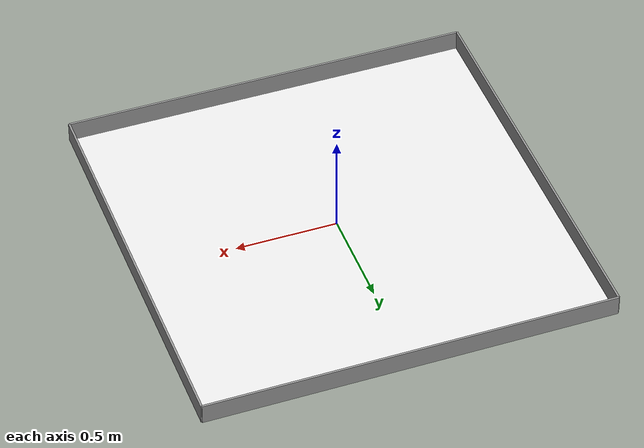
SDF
<?xml version="1.0" ?>
<sdf version="1.4">
  <world name="default">

    <!-- Global light source -->
    <include>
      <uri>model://sun</uri>
    </include>

    <light type="spot" name="spot1">
      <cast_shadows>true</cast_shadows>
      <pose>0 0.6 0.07 1.57079632679 0 0</pose>
      <diffuse>1 1 1 1</diffuse>
      <specular>.1 .1 .1 1</specular>
      <attenuation>
        <range>20</range>
        <linear>0.01</linear>
        <constant>0.5</constant>
        <quadratic>0</quadratic>
      </attenuation>
      <spot>
        <inner_angle>0.01</inner_angle>
        <outer_angle>0.2</outer_angle>
        <falloff>1.0</falloff>
      </spot>
      <cast_shadows>true</cast_shadows>
    </light>

    <light type="spot" name="spot2">
      <cast_shadows>true</cast_shadows>
      <pose>0 -0.6 0.07 -1.57079632679 0 0</pose>
      <diffuse>1 1 1 1</diffuse>
      <specular>.1 .1 .1 1</specular>
      <attenuation>
        <range>20</range>
        <linear>0.01</linear>
        <constant>0.5</constant>
        <quadratic>0</quadratic>
      </attenuation>
      <spot>
        <inner_angle>0.01</inner_angle>
        <outer_angle>0.2</outer_angle>
        <falloff>1.0</falloff>
      </spot>
      <cast_shadows>true</cast_shadows>
    </light>

    <model name="white_plane">
      <static>true</static>
      <link name="link">
        <collision name="collision">
          <geometry>
            <plane>
              <normal>0 0 1</normal>
              <size>100 100</size>
            </plane>
          </geometry>
          <surface>
            <friction>
              <ode>
                <mu>100</mu>
                <mu2>50</mu2>
              </ode>
            </friction>
          </surface>
        </collision>
        <visual name="visual">
          <cast_shadows>false</cast_shadows>
          <geometry>
            <plane>
              <normal>0 0 1</normal>
              <size>2 2</size>
            </plane>
          </geometry>
          <material>
            <script>
              <uri>file://media/materials/scripts/gazebo.material</uri>
              <name>Gazebo/White</name>
            </script>
          </material>
          <cast_shadows>true</cast_shadows>
        </visual>
      </link>
    </model>

    <model name="wall1">
      <static>true</static>
      <pose>0 -1 0.05 0 0 0</pose>
      <link name="link">
        <collision name="collision">
          <geometry>
            <box>
              <size>2 0.01 0.1</size>
            </box>
          </geometry>
        </collision>
        <visual name="visual">
          <geometry>
            <box>
              <size>2 0.01 0.1</size>
            </box>
          </geometry>
          <material>
            <script>
              <uri>file://media/materials/scripts/gazebo.material</uri>
              <name>Gazebo/Grey</name>
            </script>
          </material>
          <cast_shadows>true</cast_shadows>
        </visual>
      </link>
    </model>

    <model name="wall2">
      <static>true</static>
      <pose>0 1 0.05 0 0 0</pose>
      <link name="link">
        <collision name="collision">
          <geometry>
            <box>
              <size>2 0.01 0.1</size>
            </box>
          </geometry>
        </collision>
        <visual name="visual">
          <geometry>
            <box>
              <size>2 0.01 0.1</size>
            </box>
          </geometry>
          <material>
            <script>
              <uri>file://media/materials/scripts/gazebo.material</uri>
              <name>Gazebo/Grey</name>
            </script>
          </material>
          <cast_shadows>true</cast_shadows>
        </visual>
      </link>
    </model>

    <model name="wall3">
      <static>true</static>
      <pose>-1 0 0.05 0 0 0</pose>
      <link name="link">
        <collision name="collision">
          <geometry>
            <box>
              <size>0.01 2 0.1</size>
            </box>
          </geometry>
        </collision>
        <visual name="visual">
          <geometry>
            <box>
              <size>0.01 2 0.1</size>
            </box>
          </geometry>
          <material>
            <script>
              <uri>file://media/materials/scripts/gazebo.material</uri>
              <name>Gazebo/Grey</name>
            </script>
          </material>
          <cast_shadows>true</cast_shadows>
        </visual>
      </link>
    </model>

    <model name="wall4">
      <static>true</static>
      <pose>1 0 0.05 0 0 0</pose>
      <link name="link">
        <collision name="collision">
          <geometry>
            <box>
              <size>0.01 2 0.1</size>
            </box>
          </geometry>
        </collision>
        <visual name="visual">
          <geometry>
            <box>
              <size>0.01 2 0.1</size>
            </box>
          </geometry>
          <material>
            <script>
              <uri>file://media/materials/scripts/gazebo.material</uri>
              <name>Gazebo/Grey</name>
            </script>
          </material>
          <cast_shadows>true</cast_shadows>
        </visual>
      </link>
    </model>

  </world>
</sdf>
